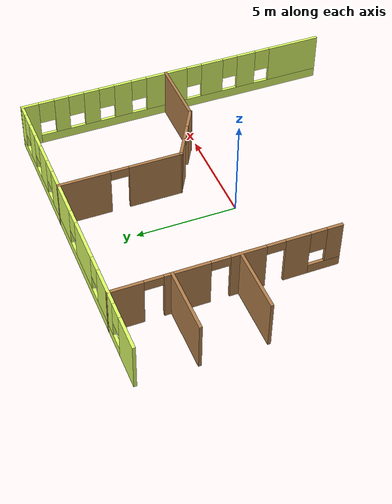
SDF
<sdf version="1.6">
 <model name="myBuilding">
  <pose>-0.015237 -2.0117 0 0 -0 0</pose>
  <link name="Wall_14">
   <pose>2.01524 7.0117 0 0 0 -1.5708</pose>
   <visual name="Wall_14_Visual_0">
    <pose>-1.79003 0 1.25 0 -0 0</pose>
    <geometry><box><size>2.56994 0.15 2.5</size></box></geometry>
    <material>
     <script><uri>file://media/materials/scripts/gazebo.material</uri><name>Gazebo/Wood</name></script>
     <ambient>1 0.976471 0.866667 1</ambient>
    </material>
    <meta><layer>0</layer></meta>
   </visual>
   <collision name="Wall_14_Collision_0">
    <geometry><box><size>2.56994 0.15 2.5</size></box></geometry>
    <pose>-1.79003 0 1.25 0 -0 0</pose>
   </collision>
   <visual name="Wall_14_Visual_1">
    <pose>1.73497 0 1.25 0 -0 0</pose>
    <geometry><box><size>2.68006 0.15 2.5</size></box></geometry>
    <material>
     <script><uri>file://media/materials/scripts/gazebo.material</uri><name>Gazebo/Wood</name></script>
     <ambient>1 0.976471 0.866667 1</ambient>
    </material>
    <meta><layer>0</layer></meta>
   </visual>
   <collision name="Wall_14_Collision_1">
    <geometry><box><size>2.68006 0.15 2.5</size></box></geometry>
    <pose>1.73497 0 1.25 0 -0 0</pose>
   </collision>
   <visual name="Wall_14_Visual_2">
    <pose>-0.055061 0 2.25 0 -0 0</pose>
    <geometry><box><size>0.9 0.15 0.5</size></box></geometry>
    <material>
     <script><uri>file://media/materials/scripts/gazebo.material</uri><name>Gazebo/Wood</name></script>
     <ambient>1 0.976471 0.866667 1</ambient>
    </material>
    <meta><layer>0</layer></meta>
   </visual>
   <collision name="Wall_14_Collision_2">
    <geometry><box><size>0.9 0.15 0.5</size></box></geometry>
    <pose>-0.055061 0 2.25 0 -0 0</pose>
   </collision>
  </link>
  <link name="Wall_16">
   <pose>3.35774 3.2367 0 0 0 -0.523547</pose>
   <visual name="Wall_16_Visual_0">
    <pose>-1.0429 0 1.25 0 -0 0</pose>
    <geometry><box><size>1.1642 0.15 2.5</size></box></geometry>
    <material>
     <script><uri>file://media/materials/scripts/gazebo.material</uri><name>Gazebo/Wood</name></script>
     <ambient>1 0.976471 0.866667 1</ambient>
    </material>
    <meta><layer>0</layer></meta>
   </visual>
   <collision name="Wall_16_Collision_0">
    <geometry><box><size>1.1642 0.15 2.5</size></box></geometry>
    <pose>-1.0429 0 1.25 0 -0 0</pose>
   </collision>
   <visual name="Wall_16_Visual_1">
    <pose>1.0321 0 1.25 0 -0 0</pose>
    <geometry><box><size>1.1858 0.15 2.5</size></box></geometry>
    <material>
     <script><uri>file://media/materials/scripts/gazebo.material</uri><name>Gazebo/Wood</name></script>
     <ambient>1 0.976471 0.866667 1</ambient>
    </material>
    <meta><layer>0</layer></meta>
   </visual>
   <collision name="Wall_16_Collision_1">
    <geometry><box><size>1.1858 0.15 2.5</size></box></geometry>
    <pose>1.0321 0 1.25 0 -0 0</pose>
   </collision>
   <visual name="Wall_16_Visual_2">
    <pose>-0.010799 0 2.25 0 -0 0</pose>
    <geometry><box><size>0.9 0.15 0.5</size></box></geometry>
    <material>
     <script><uri>file://media/materials/scripts/gazebo.material</uri><name>Gazebo/Wood</name></script>
     <ambient>1 0.976471 0.866667 1</ambient>
    </material>
    <meta><layer>0</layer></meta>
   </visual>
   <collision name="Wall_16_Collision_2">
    <geometry><box><size>0.9 0.15 0.5</size></box></geometry>
    <pose>-0.010799 0 2.25 0 -0 0</pose>
   </collision>
  </link>
  <link name="Wall_18">
   <collision name="Wall_18_Collision">
    <geometry><box><size>3.465 0.15 2.5</size></box></geometry>
    <pose>0 0 1.25 0 -0 0</pose>
   </collision>
   <visual name="Wall_18_Visual">
    <pose>0 0 1.25 0 -0 0</pose>
    <geometry><box><size>3.465 0.15 2.5</size></box></geometry>
    <material>
     <script><uri>file://media/materials/scripts/gazebo.material</uri><name>Gazebo/Wood</name></script>
     <ambient>1 0.976471 0.866667 1</ambient>
    </material>
    <meta><layer>0</layer></meta>
   </visual>
   <pose>6.35774 2.4617 0 0 -0 0</pose>
  </link>
  <link name="Wall_21">
   <pose>-4.90051 4.59371 0 0 0 -1.5708</pose>
   <visual name="Wall_21_Visual_0">
    <pose>-4.67112 0 1.25 0 -0 0</pose>
    <geometry><box><size>1.65776 0.15 2.5</size></box></geometry>
    <material>
     <script><uri>file://media/materials/scripts/gazebo.material</uri><name>Gazebo/Wood</name></script>
     <ambient>1 0.976471 0.866667 1</ambient>
    </material>
    <meta><layer>0</layer></meta>
   </visual>
   <collision name="Wall_21_Collision_0">
    <geometry><box><size>1.65776 0.15 2.5</size></box></geometry>
    <pose>-4.67112 0 1.25 0 -0 0</pose>
   </collision>
   <visual name="Wall_21_Visual_1">
    <pose>-1.86272 0 1.25 0 -0 0</pose>
    <geometry><box><size>2.15902 0.15 2.5</size></box></geometry>
    <material>
     <script><uri>file://media/materials/scripts/gazebo.material</uri><name>Gazebo/Wood</name></script>
     <ambient>1 0.976471 0.866667 1</ambient>
    </material>
    <meta><layer>0</layer></meta>
   </visual>
   <collision name="Wall_21_Collision_1">
    <geometry><box><size>2.15902 0.15 2.5</size></box></geometry>
    <pose>-1.86272 0 1.25 0 -0 0</pose>
   </collision>
   <visual name="Wall_21_Visual_2">
    <pose>0.966873 0 1.25 0 -0 0</pose>
    <geometry><box><size>1.70017 0.15 2.5</size></box></geometry>
    <material>
     <script><uri>file://media/materials/scripts/gazebo.material</uri><name>Gazebo/Wood</name></script>
     <ambient>1 0.976471 0.866667 1</ambient>
    </material>
    <meta><layer>0</layer></meta>
   </visual>
   <collision name="Wall_21_Collision_2">
    <geometry><box><size>1.70017 0.15 2.5</size></box></geometry>
    <pose>0.966873 0 1.25 0 -0 0</pose>
   </collision>
   <visual name="Wall_21_Visual_3">
    <pose>3.31748 0 1.25 0 -0 0</pose>
    <geometry><box><size>1.20104 0.15 2.5</size></box></geometry>
    <material>
     <script><uri>file://media/materials/scripts/gazebo.material</uri><name>Gazebo/Wood</name></script>
     <ambient>1 0.976471 0.866667 1</ambient>
    </material>
    <meta><layer>0</layer></meta>
   </visual>
   <collision name="Wall_21_Collision_3">
    <geometry><box><size>1.20104 0.15 2.5</size></box></geometry>
    <pose>3.31748 0 1.25 0 -0 0</pose>
   </collision>
   <visual name="Wall_21_Visual_4">
    <pose>4.709 0 0.25 0 -0 0</pose>
    <geometry><box><size>1.582 0.15 0.5</size></box></geometry>
    <material>
     <script><uri>file://media/materials/scripts/gazebo.material</uri><name>Gazebo/Wood</name></script>
     <ambient>1 0.976471 0.866667 1</ambient>
    </material>
    <meta><layer>0</layer></meta>
   </visual>
   <collision name="Wall_21_Collision_4">
    <geometry><box><size>1.582 0.15 0.5</size></box></geometry>
    <pose>4.709 0 0.25 0 -0 0</pose>
   </collision>
   <visual name="Wall_21_Visual_5">
    <pose>5.109 0 1.5 0 -0 0</pose>
    <geometry><box><size>0.782004 0.15 2</size></box></geometry>
    <material>
     <script><uri>file://media/materials/scripts/gazebo.material</uri><name>Gazebo/Wood</name></script>
     <ambient>1 0.976471 0.866667 1</ambient>
    </material>
    <meta><layer>0</layer></meta>
   </visual>
   <collision name="Wall_21_Collision_5">
    <geometry><box><size>0.782004 0.15 2</size></box></geometry>
    <pose>5.109 0 1.5 0 -0 0</pose>
   </collision>
   <visual name="Wall_21_Visual_6">
    <pose>4.318 0 1.9 0 -0 0</pose>
    <geometry><box><size>0.8 0.15 1.2</size></box></geometry>
    <material>
     <script><uri>file://media/materials/scripts/gazebo.material</uri><name>Gazebo/Wood</name></script>
     <ambient>1 0.976471 0.866667 1</ambient>
    </material>
    <meta><layer>0</layer></meta>
   </visual>
   <collision name="Wall_21_Collision_6">
    <geometry><box><size>0.8 0.15 1.2</size></box></geometry>
    <pose>4.318 0 1.9 0 -0 0</pose>
   </collision>
   <visual name="Wall_21_Visual_7">
    <pose>-3.39223 0 2.25 0 -0 0</pose>
    <geometry><box><size>0.9 0.15 0.5</size></box></geometry>
    <material>
     <script><uri>file://media/materials/scripts/gazebo.material</uri><name>Gazebo/Wood</name></script>
     <ambient>1 0.976471 0.866667 1</ambient>
    </material>
    <meta><layer>0</layer></meta>
   </visual>
   <collision name="Wall_21_Collision_7">
    <geometry><box><size>0.9 0.15 0.5</size></box></geometry>
    <pose>-3.39223 0 2.25 0 -0 0</pose>
   </collision>
   <visual name="Wall_21_Visual_8">
    <pose>-0.333212 0 2.25 0 -0 0</pose>
    <geometry><box><size>0.9 0.15 0.5</size></box></geometry>
    <material>
     <script><uri>file://media/materials/scripts/gazebo.material</uri><name>Gazebo/Wood</name></script>
     <ambient>1 0.976471 0.866667 1</ambient>
    </material>
    <meta><layer>0</layer></meta>
   </visual>
   <collision name="Wall_21_Collision_8">
    <geometry><box><size>0.9 0.15 0.5</size></box></geometry>
    <pose>-0.333212 0 2.25 0 -0 0</pose>
   </collision>
   <visual name="Wall_21_Visual_9">
    <pose>2.26696 0 2.25 0 -0 0</pose>
    <geometry><box><size>0.9 0.15 0.5</size></box></geometry>
    <material>
     <script><uri>file://media/materials/scripts/gazebo.material</uri><name>Gazebo/Wood</name></script>
     <ambient>1 0.976471 0.866667 1</ambient>
    </material>
    <meta><layer>0</layer></meta>
   </visual>
   <collision name="Wall_21_Collision_9">
    <geometry><box><size>0.9 0.15 0.5</size></box></geometry>
    <pose>2.26696 0 2.25 0 -0 0</pose>
   </collision>
  </link>
  <link name="Wall_29">
   <collision name="Wall_29_Collision">
    <geometry><box><size>3.23933 0.15 2.5</size></box></geometry>
    <pose>0 0 1.25 0 -0 0</pose>
   </collision>
   <visual name="Wall_29_Visual">
    <pose>0 0 1.25 0 -0 0</pose>
    <geometry><box><size>3.23933 0.15 2.5</size></box></geometry>
    <material>
     <script><uri>file://media/materials/scripts/gazebo.material</uri><name>Gazebo/Wood</name></script>
     <ambient>1 0.976471 0.866667 1</ambient>
    </material>
    <meta><layer>0</layer></meta>
   </visual>
   <pose>-6.44026 3.9777 0 0 -0 0</pose>
  </link>
  <link name="Wall_31">
   <collision name="Wall_31_Collision">
    <geometry><box><size>3.234 0.15 2.5</size></box></geometry>
    <pose>0 0 1.25 0 -0 0</pose>
   </collision>
   <visual name="Wall_31_Visual">
    <pose>0 0 1.25 0 -0 0</pose>
    <geometry><box><size>3.234 0.15 2.5</size></box></geometry>
    <material>
     <script><uri>file://media/materials/scripts/gazebo.material</uri><name>Gazebo/Wood</name></script>
     <ambient>1 0.976471 0.866667 1</ambient>
    </material>
    <meta><layer>0</layer></meta>
   </visual>
   <pose>-6.44276 7.1467 0 0 -0 0</pose>
  </link>
  <link name="Wall_4">
   <pose>0.015237 10.0117 0 0 -0 0</pose>
   <visual name="Wall_4_Visual_0">
    <pose>-7.22792 0 1.25 0 -0 0</pose>
    <geometry><box><size>1.69415 0.15 2.5</size></box></geometry>
    <material>
     <script><uri>file://media/materials/scripts/gazebo.material</uri><name>Gazebo/Grey</name></script>
     <ambient>0.870588 1 0.4 1</ambient>
    </material>
    <meta><layer>0</layer></meta>
   </visual>
   <collision name="Wall_4_Collision_0">
    <geometry><box><size>1.69415 0.15 2.5</size></box></geometry>
    <pose>-7.22792 0 1.25 0 -0 0</pose>
   </collision>
   <visual name="Wall_4_Visual_1">
    <pose>0.847076 0 0.25 0 -0 0</pose>
    <geometry><box><size>14.4558 0.15 0.5</size></box></geometry>
    <material>
     <script><uri>file://media/materials/scripts/gazebo.material</uri><name>Gazebo/Grey</name></script>
     <ambient>0.870588 1 0.4 1</ambient>
    </material>
    <meta><layer>0</layer></meta>
   </visual>
   <collision name="Wall_4_Collision_1">
    <geometry><box><size>14.4558 0.15 0.5</size></box></geometry>
    <pose>0.847076 0 0.25 0 -0 0</pose>
   </collision>
   <visual name="Wall_4_Visual_2">
    <pose>-4.58109 0 1.5 0 -0 0</pose>
    <geometry><box><size>1.99952 0.15 2</size></box></geometry>
    <material>
     <script><uri>file://media/materials/scripts/gazebo.material</uri><name>Gazebo/Grey</name></script>
     <ambient>0.870588 1 0.4 1</ambient>
    </material>
    <meta><layer>0</layer></meta>
   </visual>
   <collision name="Wall_4_Collision_2">
    <geometry><box><size>1.99952 0.15 2</size></box></geometry>
    <pose>-4.58109 0 1.5 0 -0 0</pose>
   </collision>
   <visual name="Wall_4_Visual_3">
    <pose>-1.6739 0 1.5 0 -0 0</pose>
    <geometry><box><size>2.21487 0.15 2</size></box></geometry>
    <material>
     <script><uri>file://media/materials/scripts/gazebo.material</uri><name>Gazebo/Grey</name></script>
     <ambient>0.870588 1 0.4 1</ambient>
    </material>
    <meta><layer>0</layer></meta>
   </visual>
   <collision name="Wall_4_Collision_3">
    <geometry><box><size>2.21487 0.15 2</size></box></geometry>
    <pose>-1.6739 0 1.5 0 -0 0</pose>
   </collision>
   <visual name="Wall_4_Visual_4">
    <pose>1.61784 0 1.5 0 -0 0</pose>
    <geometry><box><size>2.76862 0.15 2</size></box></geometry>
    <material>
     <script><uri>file://media/materials/scripts/gazebo.material</uri><name>Gazebo/Grey</name></script>
     <ambient>0.870588 1 0.4 1</ambient>
    </material>
    <meta><layer>0</layer></meta>
   </visual>
   <collision name="Wall_4_Collision_4">
    <geometry><box><size>2.76862 0.15 2</size></box></geometry>
    <pose>1.61784 0 1.5 0 -0 0</pose>
   </collision>
   <visual name="Wall_4_Visual_5">
    <pose>4.35583 0 1.5 0 -0 0</pose>
    <geometry><box><size>1.10736 0.15 2</size></box></geometry>
    <material>
     <script><uri>file://media/materials/scripts/gazebo.material</uri><name>Gazebo/Grey</name></script>
     <ambient>0.870588 1 0.4 1</ambient>
    </material>
    <meta><layer>0</layer></meta>
   </visual>
   <collision name="Wall_4_Collision_5">
    <geometry><box><size>1.10736 0.15 2</size></box></geometry>
    <pose>4.35583 0 1.5 0 -0 0</pose>
   </collision>
   <visual name="Wall_4_Visual_6">
    <pose>6.14014 0 1.5 0 -0 0</pose>
    <geometry><box><size>0.861253 0.15 2</size></box></geometry>
    <material>
     <script><uri>file://media/materials/scripts/gazebo.material</uri><name>Gazebo/Grey</name></script>
     <ambient>0.870588 1 0.4 1</ambient>
    </material>
    <meta><layer>0</layer></meta>
   </visual>
   <collision name="Wall_4_Collision_6">
    <geometry><box><size>0.861253 0.15 2</size></box></geometry>
    <pose>6.14014 0 1.5 0 -0 0</pose>
   </collision>
   <visual name="Wall_4_Visual_7">
    <pose>7.72288 0 1.5 0 -0 0</pose>
    <geometry><box><size>0.704231 0.15 2</size></box></geometry>
    <material>
     <script><uri>file://media/materials/scripts/gazebo.material</uri><name>Gazebo/Grey</name></script>
     <ambient>0.870588 1 0.4 1</ambient>
    </material>
    <meta><layer>0</layer></meta>
   </visual>
   <collision name="Wall_4_Collision_7">
    <geometry><box><size>0.704231 0.15 2</size></box></geometry>
    <pose>7.72288 0 1.5 0 -0 0</pose>
   </collision>
   <visual name="Wall_4_Visual_8">
    <pose>-5.98085 0 1.9 0 -0 0</pose>
    <geometry><box><size>0.8 0.15 1.2</size></box></geometry>
    <material>
     <script><uri>file://media/materials/scripts/gazebo.material</uri><name>Gazebo/Grey</name></script>
     <ambient>0.870588 1 0.4 1</ambient>
    </material>
    <meta><layer>0</layer></meta>
   </visual>
   <collision name="Wall_4_Collision_8">
    <geometry><box><size>0.8 0.15 1.2</size></box></geometry>
    <pose>-5.98085 0 1.9 0 -0 0</pose>
   </collision>
   <visual name="Wall_4_Visual_9">
    <pose>-3.18133 0 1.9 0 -0 0</pose>
    <geometry><box><size>0.8 0.15 1.2</size></box></geometry>
    <material>
     <script><uri>file://media/materials/scripts/gazebo.material</uri><name>Gazebo/Grey</name></script>
     <ambient>0.870588 1 0.4 1</ambient>
    </material>
    <meta><layer>0</layer></meta>
   </visual>
   <collision name="Wall_4_Collision_9">
    <geometry><box><size>0.8 0.15 1.2</size></box></geometry>
    <pose>-3.18133 0 1.9 0 -0 0</pose>
   </collision>
   <visual name="Wall_4_Visual_10">
    <pose>-0.166464 0 1.9 0 -0 0</pose>
    <geometry><box><size>0.8 0.15 1.2</size></box></geometry>
    <material>
     <script><uri>file://media/materials/scripts/gazebo.material</uri><name>Gazebo/Grey</name></script>
     <ambient>0.870588 1 0.4 1</ambient>
    </material>
    <meta><layer>0</layer></meta>
   </visual>
   <collision name="Wall_4_Collision_10">
    <geometry><box><size>0.8 0.15 1.2</size></box></geometry>
    <pose>-0.166464 0 1.9 0 -0 0</pose>
   </collision>
   <visual name="Wall_4_Visual_11">
    <pose>3.40215 0 1.9 0 -0 0</pose>
    <geometry><box><size>0.8 0.15 1.2</size></box></geometry>
    <material>
     <script><uri>file://media/materials/scripts/gazebo.material</uri><name>Gazebo/Grey</name></script>
     <ambient>0.870588 1 0.4 1</ambient>
    </material>
    <meta><layer>0</layer></meta>
   </visual>
   <collision name="Wall_4_Collision_11">
    <geometry><box><size>0.8 0.15 1.2</size></box></geometry>
    <pose>3.40215 0 1.9 0 -0 0</pose>
   </collision>
   <visual name="Wall_4_Visual_12">
    <pose>5.30952 0 1.9 0 -0 0</pose>
    <geometry><box><size>0.8 0.15 1.2</size></box></geometry>
    <material>
     <script><uri>file://media/materials/scripts/gazebo.material</uri><name>Gazebo/Grey</name></script>
     <ambient>0.870588 1 0.4 1</ambient>
    </material>
    <meta><layer>0</layer></meta>
   </visual>
   <collision name="Wall_4_Collision_12">
    <geometry><box><size>0.8 0.15 1.2</size></box></geometry>
    <pose>5.30952 0 1.9 0 -0 0</pose>
   </collision>
   <visual name="Wall_4_Visual_13">
    <pose>6.97077 0 1.9 0 -0 0</pose>
    <geometry><box><size>0.8 0.15 1.2</size></box></geometry>
    <material>
     <script><uri>file://media/materials/scripts/gazebo.material</uri><name>Gazebo/Grey</name></script>
     <ambient>0.870588 1 0.4 1</ambient>
    </material>
    <meta><layer>0</layer></meta>
   </visual>
   <collision name="Wall_4_Collision_13">
    <geometry><box><size>0.8 0.15 1.2</size></box></geometry>
    <pose>6.97077 0 1.9 0 -0 0</pose>
   </collision>
  </link>
  <link name="Wall_6">
   <pose>8.01524 2.0117 0 0 0 -1.5708</pose>
   <visual name="Wall_6_Visual_0">
    <pose>-7.62793 0 1.25 0 -0 0</pose>
    <geometry><box><size>0.89414 0.15 2.5</size></box></geometry>
    <material>
     <script><uri>file://media/materials/scripts/gazebo.material</uri><name>Gazebo/Grey</name></script>
     <ambient>0.870588 1 0.4 1</ambient>
    </material>
    <meta><layer>0</layer></meta>
   </visual>
   <collision name="Wall_6_Collision_0">
    <geometry><box><size>0.89414 0.15 2.5</size></box></geometry>
    <pose>-7.62793 0 1.25 0 -0 0</pose>
   </collision>
   <visual name="Wall_6_Visual_1">
    <pose>0.44707 0 0.25 0 -0 0</pose>
    <geometry><box><size>15.2559 0.15 0.5</size></box></geometry>
    <material>
     <script><uri>file://media/materials/scripts/gazebo.material</uri><name>Gazebo/Grey</name></script>
     <ambient>0.870588 1 0.4 1</ambient>
    </material>
    <meta><layer>0</layer></meta>
   </visual>
   <collision name="Wall_6_Collision_1">
    <geometry><box><size>15.2559 0.15 0.5</size></box></geometry>
    <pose>0.44707 0 0.25 0 -0 0</pose>
   </collision>
   <visual name="Wall_6_Visual_2">
    <pose>-6.01176 0 1.5 0 -0 0</pose>
    <geometry><box><size>0.738197 0.15 2</size></box></geometry>
    <material>
     <script><uri>file://media/materials/scripts/gazebo.material</uri><name>Gazebo/Grey</name></script>
     <ambient>0.870588 1 0.4 1</ambient>
    </material>
    <meta><layer>0</layer></meta>
   </visual>
   <collision name="Wall_6_Collision_2">
    <geometry><box><size>0.738197 0.15 2</size></box></geometry>
    <pose>-6.01176 0 1.5 0 -0 0</pose>
   </collision>
   <visual name="Wall_6_Visual_3">
    <pose>-4.4428 0 1.5 0 -0 0</pose>
    <geometry><box><size>0.799725 0.15 2</size></box></geometry>
    <material>
     <script><uri>file://media/materials/scripts/gazebo.material</uri><name>Gazebo/Grey</name></script>
     <ambient>0.870588 1 0.4 1</ambient>
    </material>
    <meta><layer>0</layer></meta>
   </visual>
   <collision name="Wall_6_Collision_3">
    <geometry><box><size>0.799725 0.15 2</size></box></geometry>
    <pose>-4.4428 0 1.5 0 -0 0</pose>
   </collision>
   <visual name="Wall_6_Visual_4">
    <pose>-2.78155 0 1.5 0 -0 0</pose>
    <geometry><box><size>0.922781 0.15 2</size></box></geometry>
    <material>
     <script><uri>file://media/materials/scripts/gazebo.material</uri><name>Gazebo/Grey</name></script>
     <ambient>0.870588 1 0.4 1</ambient>
    </material>
    <meta><layer>0</layer></meta>
   </visual>
   <collision name="Wall_6_Collision_4">
    <geometry><box><size>0.922781 0.15 2</size></box></geometry>
    <pose>-2.78155 0 1.5 0 -0 0</pose>
   </collision>
   <visual name="Wall_6_Visual_5">
    <pose>-0.412725 0 1.5 0 -0 0</pose>
    <geometry><box><size>2.21487 0.15 2</size></box></geometry>
    <material>
     <script><uri>file://media/materials/scripts/gazebo.material</uri><name>Gazebo/Grey</name></script>
     <ambient>0.870588 1 0.4 1</ambient>
    </material>
    <meta><layer>0</layer></meta>
   </visual>
   <collision name="Wall_6_Collision_5">
    <geometry><box><size>2.21487 0.15 2</size></box></geometry>
    <pose>-0.412725 0 1.5 0 -0 0</pose>
   </collision>
   <visual name="Wall_6_Visual_6">
    <pose>2.09454 0 1.5 0 -0 0</pose>
    <geometry><box><size>1.19966 0.15 2</size></box></geometry>
    <material>
     <script><uri>file://media/materials/scripts/gazebo.material</uri><name>Gazebo/Grey</name></script>
     <ambient>0.870588 1 0.4 1</ambient>
    </material>
    <meta><layer>0</layer></meta>
   </visual>
   <collision name="Wall_6_Collision_6">
    <geometry><box><size>1.19966 0.15 2</size></box></geometry>
    <pose>2.09454 0 1.5 0 -0 0</pose>
   </collision>
   <visual name="Wall_6_Visual_7">
    <pose>4.0019 0 1.5 0 -0 0</pose>
    <geometry><box><size>1.01507 0.15 2</size></box></geometry>
    <material>
     <script><uri>file://media/materials/scripts/gazebo.material</uri><name>Gazebo/Grey</name></script>
     <ambient>0.870588 1 0.4 1</ambient>
    </material>
    <meta><layer>0</layer></meta>
   </visual>
   <collision name="Wall_6_Collision_7">
    <geometry><box><size>1.01507 0.15 2</size></box></geometry>
    <pose>4.0019 0 1.5 0 -0 0</pose>
   </collision>
   <visual name="Wall_6_Visual_8">
    <pose>6.69222 0 1.5 0 -0 0</pose>
    <geometry><box><size>2.76556 0.15 2</size></box></geometry>
    <material>
     <script><uri>file://media/materials/scripts/gazebo.material</uri><name>Gazebo/Grey</name></script>
     <ambient>0.870588 1 0.4 1</ambient>
    </material>
    <meta><layer>0</layer></meta>
   </visual>
   <collision name="Wall_6_Collision_8">
    <geometry><box><size>2.76556 0.15 2</size></box></geometry>
    <pose>6.69222 0 1.5 0 -0 0</pose>
   </collision>
   <visual name="Wall_6_Visual_9">
    <pose>-6.78086 0 1.9 0 -0 0</pose>
    <geometry><box><size>0.8 0.15 1.2</size></box></geometry>
    <material>
     <script><uri>file://media/materials/scripts/gazebo.material</uri><name>Gazebo/Grey</name></script>
     <ambient>0.870588 1 0.4 1</ambient>
    </material>
    <meta><layer>0</layer></meta>
   </visual>
   <collision name="Wall_6_Collision_9">
    <geometry><box><size>0.8 0.15 1.2</size></box></geometry>
    <pose>-6.78086 0 1.9 0 -0 0</pose>
   </collision>
   <visual name="Wall_6_Visual_10">
    <pose>-5.24266 0 1.9 0 -0 0</pose>
    <geometry><box><size>0.8 0.15 1.2</size></box></geometry>
    <material>
     <script><uri>file://media/materials/scripts/gazebo.material</uri><name>Gazebo/Grey</name></script>
     <ambient>0.870588 1 0.4 1</ambient>
    </material>
    <meta><layer>0</layer></meta>
   </visual>
   <collision name="Wall_6_Collision_10">
    <geometry><box><size>0.8 0.15 1.2</size></box></geometry>
    <pose>-5.24266 0 1.9 0 -0 0</pose>
   </collision>
   <visual name="Wall_6_Visual_11">
    <pose>-3.64294 0 1.9 0 -0 0</pose>
    <geometry><box><size>0.8 0.15 1.2</size></box></geometry>
    <material>
     <script><uri>file://media/materials/scripts/gazebo.material</uri><name>Gazebo/Grey</name></script>
     <ambient>0.870588 1 0.4 1</ambient>
    </material>
    <meta><layer>0</layer></meta>
   </visual>
   <collision name="Wall_6_Collision_11">
    <geometry><box><size>0.8 0.15 1.2</size></box></geometry>
    <pose>-3.64294 0 1.9 0 -0 0</pose>
   </collision>
   <visual name="Wall_6_Visual_12">
    <pose>-1.92016 0 1.9 0 -0 0</pose>
    <geometry><box><size>0.8 0.15 1.2</size></box></geometry>
    <material>
     <script><uri>file://media/materials/scripts/gazebo.material</uri><name>Gazebo/Grey</name></script>
     <ambient>0.870588 1 0.4 1</ambient>
    </material>
    <meta><layer>0</layer></meta>
   </visual>
   <collision name="Wall_6_Collision_12">
    <geometry><box><size>0.8 0.15 1.2</size></box></geometry>
    <pose>-1.92016 0 1.9 0 -0 0</pose>
   </collision>
   <visual name="Wall_6_Visual_13">
    <pose>1.09471 0 1.9 0 -0 0</pose>
    <geometry><box><size>0.8 0.15 1.2</size></box></geometry>
    <material>
     <script><uri>file://media/materials/scripts/gazebo.material</uri><name>Gazebo/Grey</name></script>
     <ambient>0.870588 1 0.4 1</ambient>
    </material>
    <meta><layer>0</layer></meta>
   </visual>
   <collision name="Wall_6_Collision_13">
    <geometry><box><size>0.8 0.15 1.2</size></box></geometry>
    <pose>1.09471 0 1.9 0 -0 0</pose>
   </collision>
   <visual name="Wall_6_Visual_14">
    <pose>3.09436 0 1.9 0 -0 0</pose>
    <geometry><box><size>0.8 0.15 1.2</size></box></geometry>
    <material>
     <script><uri>file://media/materials/scripts/gazebo.material</uri><name>Gazebo/Grey</name></script>
     <ambient>0.870588 1 0.4 1</ambient>
    </material>
    <meta><layer>0</layer></meta>
   </visual>
   <collision name="Wall_6_Collision_14">
    <geometry><box><size>0.8 0.15 1.2</size></box></geometry>
    <pose>3.09436 0 1.9 0 -0 0</pose>
   </collision>
   <visual name="Wall_6_Visual_15">
    <pose>4.90944 0 1.9 0 -0 0</pose>
    <geometry><box><size>0.8 0.15 1.2</size></box></geometry>
    <material>
     <script><uri>file://media/materials/scripts/gazebo.material</uri><name>Gazebo/Grey</name></script>
     <ambient>0.870588 1 0.4 1</ambient>
    </material>
    <meta><layer>0</layer></meta>
   </visual>
   <collision name="Wall_6_Collision_15">
    <geometry><box><size>0.8 0.15 1.2</size></box></geometry>
    <pose>4.90944 0 1.9 0 -0 0</pose>
   </collision>
  </link>
  <static>1</static>
 </model>
</sdf>
